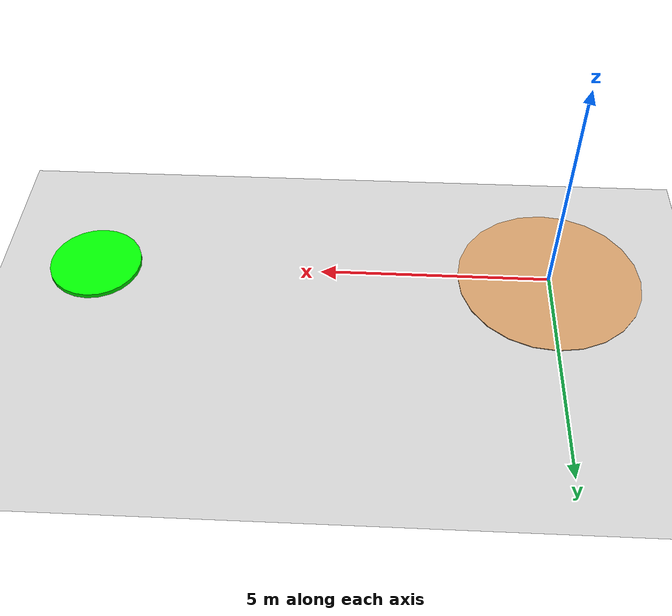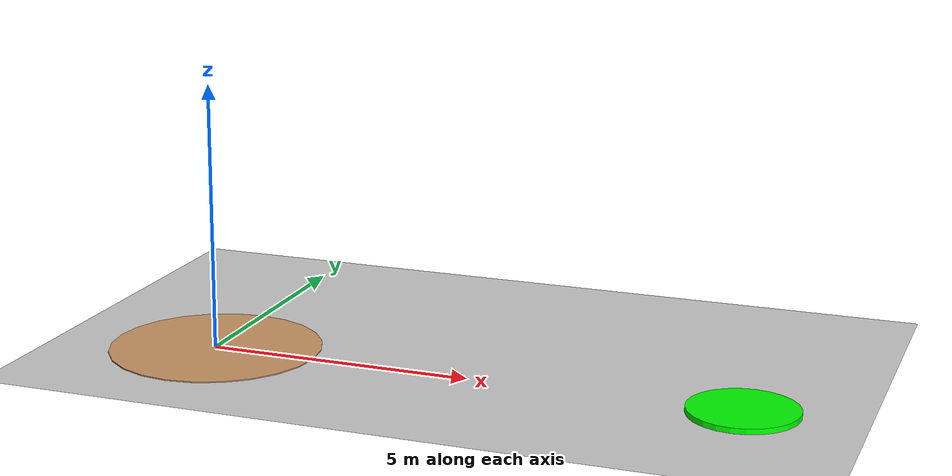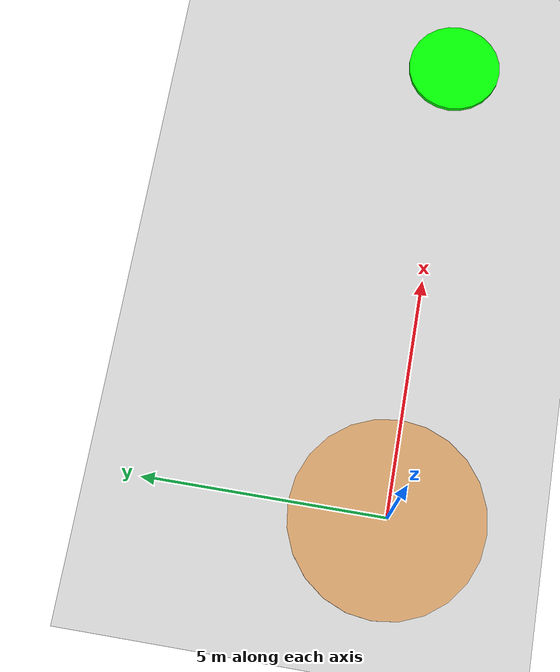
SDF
<?xml version="1.0"?>
<sdf version="1.6">
  <world name="formicabot_world">
    <include>
      <uri>model://ground_plane</uri>
    </include>

    <include>
      <uri>model://sun</uri>
    </include>

    <!-- Nest -->
    <model name="nest">
      <pose>0 0 0.01 0 0 0</pose>
      <static>true</static>
      <link name="nest_link">
        <visual name="visual">
          <geometry>
            <cylinder>
              <radius>2</radius>
              <length>0.02</length>
            </cylinder>
          </geometry>
          <material>
            <ambient>0.8 0.6 0.4 1</ambient>
          </material>
        </visual>
      </link>
    </model>

    <!-- Food Source -->
    <model name="food_source">
      <pose>10 0 0.05 0 0 0</pose>
      <static>true</static>
      <link name="food_link">
        <visual name="visual">
          <geometry>
            <cylinder>
              <radius>1</radius>
              <length>0.1</length>
            </cylinder>
          </geometry>
          <material>
            <ambient>0 1 0 1</ambient>
          </material>
        </visual>
      </link>
    </model>

  </world>
</sdf>
